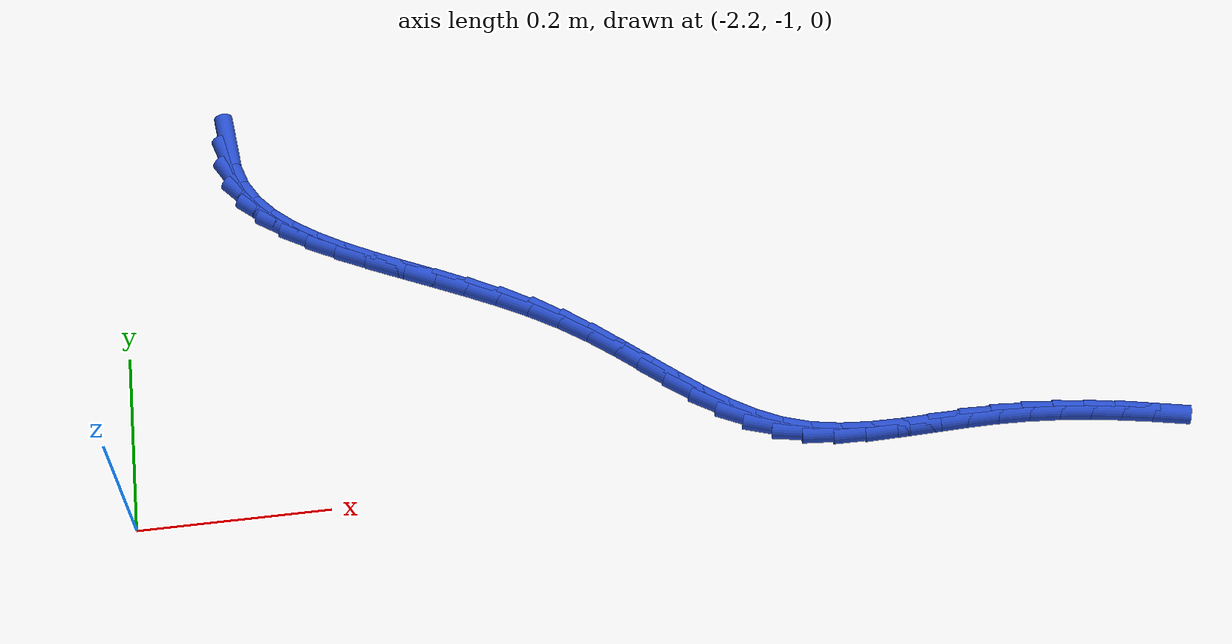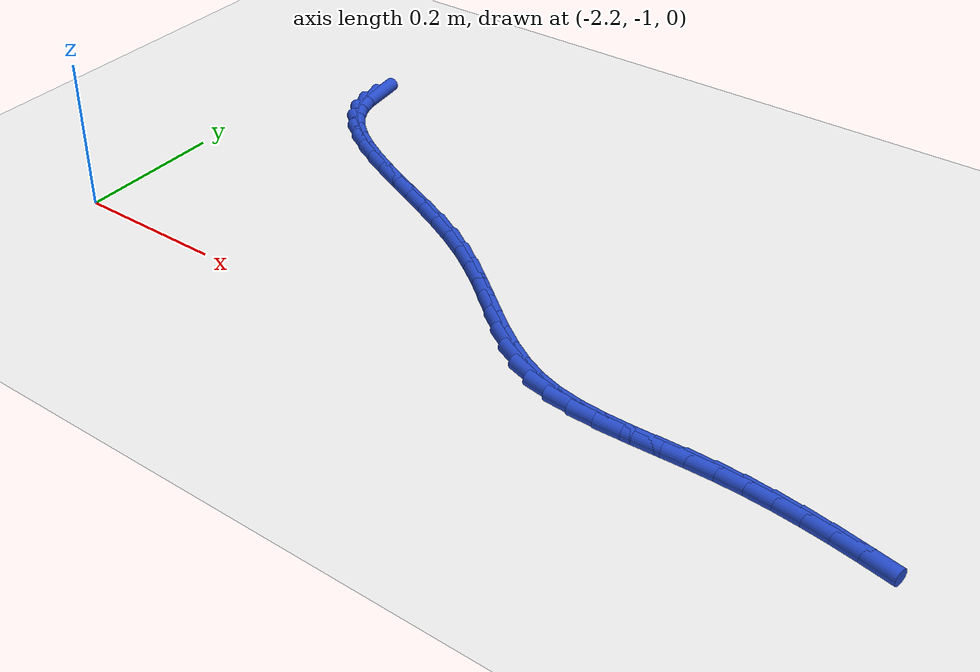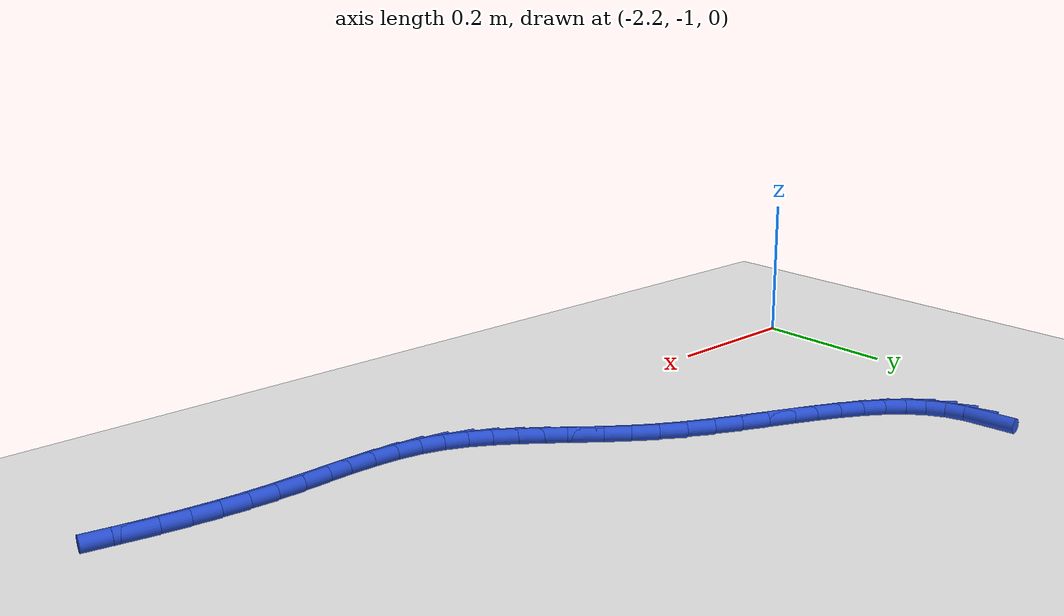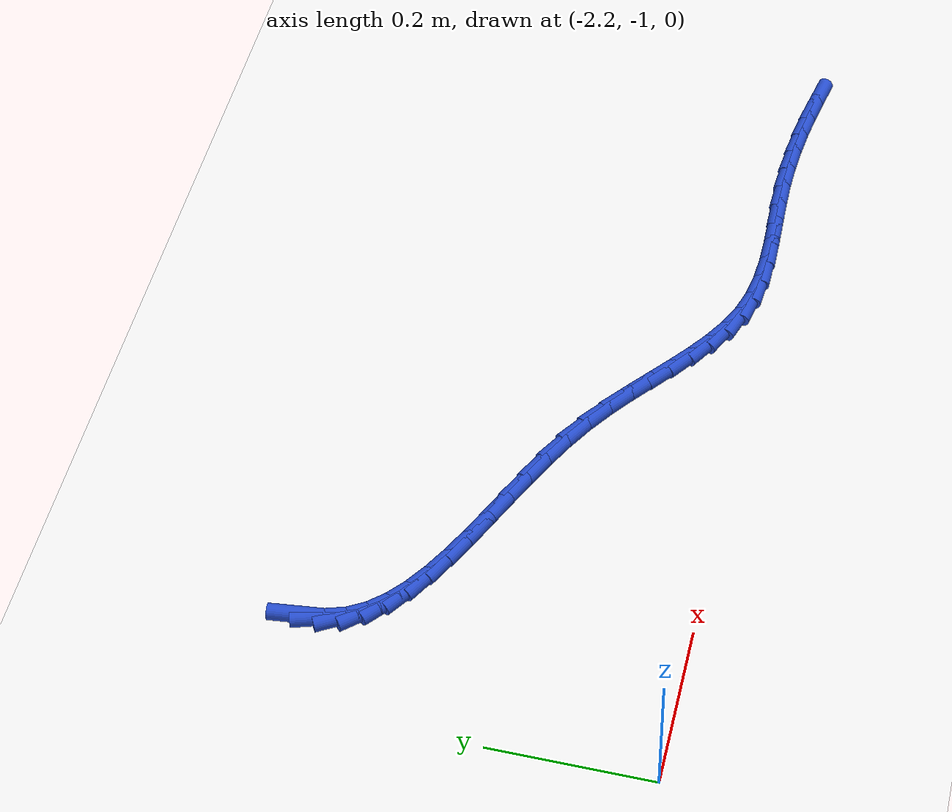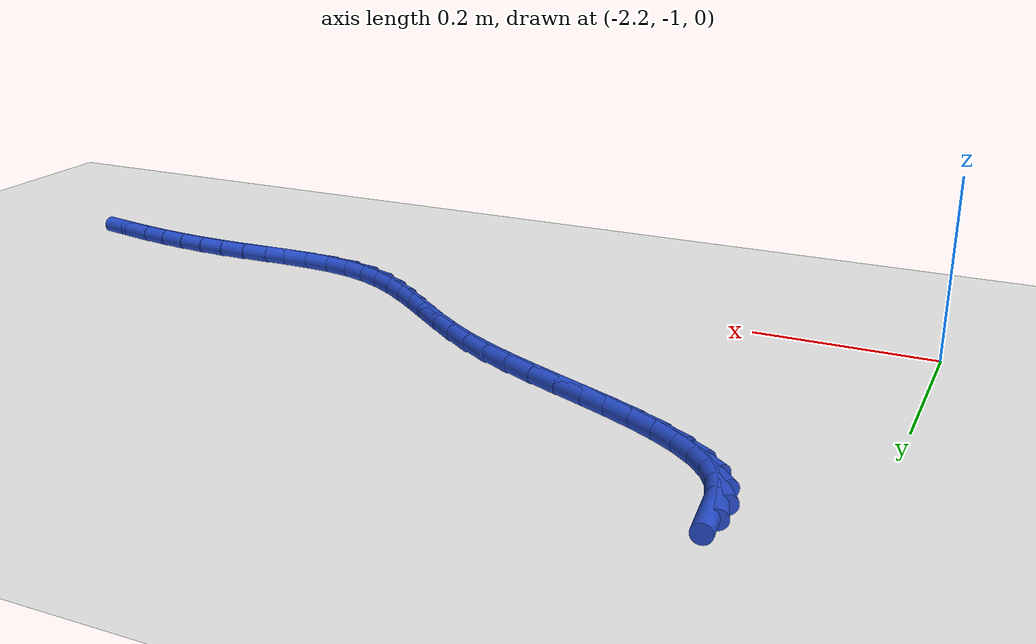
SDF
<sdf version="1.6">
 <world name="default">
  <model name="ground_plane">
   <static>1</static>
   <link name="link">
    <collision name="collision">
     <geometry><plane><normal>0 0 1</normal><size>100 100</size></plane></geometry>
     <surface><friction><ode><mu>100</mu><mu2>50</mu2></ode></friction></surface>
    </collision>
    <visual name="visual">
     <cast_shadows>0</cast_shadows>
     <geometry><plane><normal>0 0 1</normal><size>100 100</size></plane></geometry>
     <material>
      <script><uri>file://media/materials/scripts/gazebo.material</uri><name>Gazebo/WhiteGlow</name></script>
     </material>
    </visual>
   </link>
  </model>
  <model name="line">
   <link name="link_122">
    <pose>-2.081999684478303 -0.5546508269318868 0.01 0 1.57 -1.4625147714835065</pose>
    <collision name="collision">
     <geometry><cylinder><radius>0.01</radius><length>0.08</length></cylinder></geometry>
    </collision>
    <visual name="visual">
     <material>
      <script><name>Gazebo/Blue</name><uri>file://media/materials/scripts/gazebo.material</uri></script>
     </material>
     <geometry><cylinder><radius>0.01</radius><length>0.08</length></cylinder></geometry>
    </visual>
   </link>
   <link name="link_123">
    <pose>-2.0791011387692326 -0.5813147260082517 0.01 0 1.57 -1.2708981963711632</pose>
    <collision name="collision">
     <geometry><cylinder><radius>0.01</radius><length>0.08</length></cylinder></geometry>
    </collision>
    <visual name="visual">
     <material>
      <script><name>Gazebo/Blue</name><uri>file://media/materials/scripts/gazebo.material</uri></script>
     </material>
     <geometry><cylinder><radius>0.01</radius><length>0.08</length></cylinder></geometry>
    </visual>
   </link>
   <link name="link_124">
    <pose>-2.07151443708524 -0.6058493225656204 0.01 0 1.57 -1.0509214674087284</pose>
    <collision name="collision">
     <geometry><cylinder><radius>0.01</radius><length>0.08</length></cylinder></geometry>
    </collision>
    <visual name="visual">
     <material>
      <script><name>Gazebo/Blue</name><uri>file://media/materials/scripts/gazebo.material</uri></script>
     </material>
     <geometry><cylinder><radius>0.01</radius><length>0.08</length></cylinder></geometry>
    </visual>
   </link>
   <link name="link_125">
    <pose>-2.0587732671646557 -0.628108697384702 0.01 0 1.57 -0.8571988542562122</pose>
    <collision name="collision">
     <geometry><cylinder><radius>0.01</radius><length>0.08</length></cylinder></geometry>
    </collision>
    <visual name="visual">
     <material>
      <script><name>Gazebo/Blue</name><uri>file://media/materials/scripts/gazebo.material</uri></script>
     </material>
     <geometry><cylinder><radius>0.01</radius><length>0.08</length></cylinder></geometry>
    </visual>
   </link>
   <link name="link_126">
    <pose>-2.0412643425670702 -0.6483314474581567 0.01 0 1.57 -0.7076561087424363</pose>
    <collision name="collision">
     <geometry><cylinder><radius>0.01</radius><length>0.08</length></cylinder></geometry>
    </collision>
    <visual name="visual">
     <material>
      <script><name>Gazebo/Blue</name><uri>file://media/materials/scripts/gazebo.material</uri></script>
     </material>
     <geometry><cylinder><radius>0.01</radius><length>0.08</length></cylinder></geometry>
    </visual>
   </link>
   <link name="link_127">
    <pose>-2.019605038306566 -0.6668601444374603 0.01 0 1.57 -0.5984363878981686</pose>
    <collision name="collision">
     <geometry><cylinder><radius>0.01</radius><length>0.08</length></cylinder></geometry>
    </collision>
    <visual name="visual">
     <material>
      <script><name>Gazebo/Blue</name><uri>file://media/materials/scripts/gazebo.material</uri></script>
     </material>
     <geometry><cylinder><radius>0.01</radius><length>0.08</length></cylinder></geometry>
    </visual>
   </link>
   <link name="link_128">
    <pose>-1.9944127332243742 -0.6840373616992432 0.01 0 1.57 -0.522001447545632</pose>
    <collision name="collision">
     <geometry><cylinder><radius>0.01</radius><length>0.08</length></cylinder></geometry>
    </collision>
    <visual name="visual">
     <material>
      <script><name>Gazebo/Blue</name><uri>file://media/materials/scripts/gazebo.material</uri></script>
     </material>
     <geometry><cylinder><radius>0.01</radius><length>0.08</length></cylinder></geometry>
    </visual>
   </link>
   <link name="link_129">
    <pose>-1.966304806161729 -0.7002056726201351 0.01 0 1.57 -0.47148065394123917</pose>
    <collision name="collision">
     <geometry><cylinder><radius>0.01</radius><length>0.08</length></cylinder></geometry>
    </collision>
    <visual name="visual">
     <material>
      <script><name>Gazebo/Blue</name><uri>file://media/materials/scripts/gazebo.material</uri></script>
     </material>
     <geometry><cylinder><radius>0.01</radius><length>0.08</length></cylinder></geometry>
    </visual>
   </link>
   <link name="link_130">
    <pose>-1.9358986359598631 -0.7157076505767664 0.01 0 1.57 -0.44184201876323437</pose>
    <collision name="collision">
     <geometry><cylinder><radius>0.01</radius><length>0.08</length></cylinder></geometry>
    </collision>
    <visual name="visual">
     <material>
      <script><name>Gazebo/Blue</name><uri>file://media/materials/scripts/gazebo.material</uri></script>
     </material>
     <geometry><cylinder><radius>0.01</radius><length>0.08</length></cylinder></geometry>
    </visual>
   </link>
   <link name="link_131">
    <pose>-1.90381160146001 -0.7308858689457673 0.01 0 1.57 -0.4298381554982169</pose>
    <collision name="collision">
     <geometry><cylinder><radius>0.01</radius><length>0.08</length></cylinder></geometry>
    </collision>
    <visual name="visual">
     <material>
      <script><name>Gazebo/Blue</name><uri>file://media/materials/scripts/gazebo.material</uri></script>
     </material>
     <geometry><cylinder><radius>0.01</radius><length>0.08</length></cylinder></geometry>
    </visual>
   </link>
   <link name="link_132">
    <pose>-1.8706610815034006 -0.7460829011037678 0.01 0 1.57 -0.4336899541422334</pose>
    <collision name="collision">
     <geometry><cylinder><radius>0.01</radius><length>0.08</length></cylinder></geometry>
    </collision>
    <visual name="visual">
     <material>
      <script><name>Gazebo/Blue</name><uri>file://media/materials/scripts/gazebo.material</uri></script>
     </material>
     <geometry><cylinder><radius>0.01</radius><length>0.08</length></cylinder></geometry>
    </visual>
   </link>
   <link name="link_133">
    <pose>-1.8370644549312698 -0.7616413204273975 0.01 0 1.57 -0.4528122594154153</pose>
    <collision name="collision">
     <geometry><cylinder><radius>0.01</radius><length>0.08</length></cylinder></geometry>
    </collision>
    <visual name="visual">
     <material>
      <script><name>Gazebo/Blue</name><uri>file://media/materials/scripts/gazebo.material</uri></script>
     </material>
     <geometry><cylinder><radius>0.01</radius><length>0.08</length></cylinder></geometry>
    </visual>
   </link>
   <link name="link_134">
    <pose>-1.8036391005848493 -0.7779037002932869 0.01 0 1.57 -0.4876326988345452</pose>
    <collision name="collision">
     <geometry><cylinder><radius>0.01</radius><length>0.08</length></cylinder></geometry>
    </collision>
    <visual name="visual">
     <material>
      <script><name>Gazebo/Blue</name><uri>file://media/materials/scripts/gazebo.material</uri></script>
     </material>
     <geometry><cylinder><radius>0.01</radius><length>0.08</length></cylinder></geometry>
    </visual>
   </link>
   <link name="link_135">
    <pose>-1.7710023973053728 -0.7952126140780663 0.01 0 1.57 -0.5394681829736061</pose>
    <collision name="collision">
     <geometry><cylinder><radius>0.01</radius><length>0.08</length></cylinder></geometry>
    </collision>
    <visual name="visual">
     <material>
      <script><name>Gazebo/Blue</name><uri>file://media/materials/scripts/gazebo.material</uri></script>
     </material>
     <geometry><cylinder><radius>0.01</radius><length>0.08</length></cylinder></geometry>
    </visual>
   </link>
   <link name="link_136">
    <pose>-1.7397717239340733 -0.8139106351583656 0.01 0 1.57 -0.6051430117660546</pose>
    <collision name="collision">
     <geometry><cylinder><radius>0.01</radius><length>0.08</length></cylinder></geometry>
    </collision>
    <visual name="visual">
     <material>
      <script><name>Gazebo/Blue</name><uri>file://media/materials/scripts/gazebo.material</uri></script>
     </material>
     <geometry><cylinder><radius>0.01</radius><length>0.08</length></cylinder></geometry>
    </visual>
   </link>
   <link name="link_137">
    <pose>-1.7104284781011083 -0.8342077602424838 0.01 0 1.57 -0.6582336301331494</pose>
    <collision name="collision">
     <geometry><cylinder><radius>0.01</radius><length>0.08</length></cylinder></geometry>
    </collision>
    <visual name="visual">
     <material>
      <script><name>Gazebo/Blue</name><uri>file://media/materials/scripts/gazebo.material</uri></script>
     </material>
     <geometry><cylinder><radius>0.01</radius><length>0.08</length></cylinder></geometry>
    </visual>
   </link>
   <link name="link_138">
    <pose>-1.6827404905693966 -0.8556182846462811 0.01 0 1.57 -0.6886724020519869</pose>
    <collision name="collision">
     <geometry><cylinder><radius>0.01</radius><length>0.08</length></cylinder></geometry>
    </collision>
    <visual name="visual">
     <material>
      <script><name>Gazebo/Blue</name><uri>file://media/materials/scripts/gazebo.material</uri></script>
     </material>
     <geometry><cylinder><radius>0.01</radius><length>0.08</length></cylinder></geometry>
    </visual>
   </link>
   <link name="link_139">
    <pose>-1.6562423378928068 -0.8774290894298844 0.01 0 1.57 -0.6951871341471364</pose>
    <collision name="collision">
     <geometry><cylinder><radius>0.01</radius><length>0.08</length></cylinder></geometry>
    </collision>
    <visual name="visual">
     <material>
      <script><name>Gazebo/Blue</name><uri>file://media/materials/scripts/gazebo.material</uri></script>
     </material>
     <geometry><cylinder><radius>0.01</radius><length>0.08</length></cylinder></geometry>
    </visual>
   </link>
   <link name="link_140">
    <pose>-1.6304684647541918 -0.8989269270840424 0.01 0 1.57 -0.676161337664902</pose>
    <collision name="collision">
     <geometry><cylinder><radius>0.01</radius><length>0.08</length></cylinder></geometry>
    </collision>
    <visual name="visual">
     <material>
      <script><name>Gazebo/Blue</name><uri>file://media/materials/scripts/gazebo.material</uri></script>
     </material>
     <geometry><cylinder><radius>0.01</radius><length>0.08</length></cylinder></geometry>
    </visual>
   </link>
   <link name="link_141">
    <pose>-1.6049533158364044 -0.9193985500995039 0.01 0 1.57 -0.629438453676671</pose>
    <collision name="collision">
     <geometry><cylinder><radius>0.01</radius><length>0.08</length></cylinder></geometry>
    </collision>
    <visual name="visual">
     <material>
      <script><name>Gazebo/Blue</name><uri>file://media/materials/scripts/gazebo.material</uri></script>
     </material>
     <geometry><cylinder><radius>0.01</radius><length>0.08</length></cylinder></geometry>
    </visual>
   </link>
   <link name="link_142">
    <pose>-1.5792313358222974 -0.938130710967017 0.01 0 1.57 -0.5526646406215686</pose>
    <collision name="collision">
     <geometry><cylinder><radius>0.01</radius><length>0.08</length></cylinder></geometry>
    </collision>
    <visual name="visual">
     <material>
      <script><name>Gazebo/Blue</name><uri>file://media/materials/scripts/gazebo.material</uri></script>
     </material>
     <geometry><cylinder><radius>0.01</radius><length>0.08</length></cylinder></geometry>
    </visual>
   </link>
   <link name="link_143">
    <pose>-1.5528369693947233 -0.9544101621773301 0.01 0 1.57 -0.4445042122964524</pose>
    <collision name="collision">
     <geometry><cylinder><radius>0.01</radius><length>0.08</length></cylinder></geometry>
    </collision>
    <visual name="visual">
     <material>
      <script><name>Gazebo/Blue</name><uri>file://media/materials/scripts/gazebo.material</uri></script>
     </material>
     <geometry><cylinder><radius>0.01</radius><length>0.08</length></cylinder></geometry>
    </visual>
   </link>
   <link name="link_144">
    <pose>-1.5253046612365344 -0.9675236562211915 0.01 0 1.57 -0.3075157063915653</pose>
    <collision name="collision">
     <geometry><cylinder><radius>0.01</radius><length>0.08</length></cylinder></geometry>
    </collision>
    <visual name="visual">
     <material>
      <script><name>Gazebo/Blue</name><uri>file://media/materials/scripts/gazebo.material</uri></script>
     </material>
     <geometry><cylinder><radius>0.01</radius><length>0.08</length></cylinder></geometry>
    </visual>
   </link>
   <link name="link_145">
    <pose>-1.496177364236458 -0.9767742082027987 0.01 0 1.57 -0.17219749805106532</pose>
    <collision name="collision">
     <geometry><cylinder><radius>0.01</radius><length>0.08</length></cylinder></geometry>
    </collision>
    <visual name="visual">
     <material>
      <script><name>Gazebo/Blue</name><uri>file://media/materials/scripts/gazebo.material</uri></script>
     </material>
     <geometry><cylinder><radius>0.01</radius><length>0.08</length></cylinder></geometry>
    </visual>
   </link>
   <link name="link_146">
    <pose>-1.4653490954815356 -0.9821358585208632 0.01 0 1.57 -0.07266737975017662</pose>
    <collision name="collision">
     <geometry><cylinder><radius>0.01</radius><length>0.08</length></cylinder></geometry>
    </collision>
    <visual name="visual">
     <material>
      <script><name>Gazebo/Blue</name><uri>file://media/materials/scripts/gazebo.material</uri></script>
     </material>
     <geometry><cylinder><radius>0.01</radius><length>0.08</length></cylinder></geometry>
    </visual>
   </link>
   <link name="link_147">
    <pose>-1.4331820258518209 -0.9844774783154442 0.01 0 1.57 -0.007630202465955034</pose>
    <collision name="collision">
     <geometry><cylinder><radius>0.01</radius><length>0.08</length></cylinder></geometry>
    </collision>
    <visual name="visual">
     <material>
      <script><name>Gazebo/Blue</name><uri>file://media/materials/scripts/gazebo.material</uri></script>
     </material>
     <geometry><cylinder><radius>0.01</radius><length>0.08</length></cylinder></geometry>
    </visual>
   </link>
   <link name="link_148">
    <pose>-1.4000708622033913 -0.9847301281010734 0.01 0 1.57 0.026887306678852807</pose>
    <collision name="collision">
     <geometry><cylinder><radius>0.01</radius><length>0.08</length></cylinder></geometry>
    </collision>
    <visual name="visual">
     <material>
      <script><name>Gazebo/Blue</name><uri>file://media/materials/scripts/gazebo.material</uri></script>
     </material>
     <geometry><cylinder><radius>0.01</radius><length>0.08</length></cylinder></geometry>
    </visual>
   </link>
   <link name="link_149">
    <pose>-1.3664103113923247 -0.9838248683922824 0.01 0 1.57 0.03346675320288039</pose>
    <collision name="collision">
     <geometry><cylinder><radius>0.01</radius><length>0.08</length></cylinder></geometry>
    </collision>
    <visual name="visual">
     <material>
      <script><name>Gazebo/Blue</name><uri>file://media/materials/scripts/gazebo.material</uri></script>
     </material>
     <geometry><cylinder><radius>0.01</radius><length>0.08</length></cylinder></geometry>
    </visual>
   </link>
   <link name="link_150">
    <pose>-1.3325950802746978 -0.9826927597036026 0.01 0 1.57 0.012749294994267375</pose>
    <collision name="collision">
     <geometry><cylinder><radius>0.01</radius><length>0.08</length></cylinder></geometry>
    </collision>
    <visual name="visual">
     <material>
      <script><name>Gazebo/Blue</name><uri>file://media/materials/scripts/gazebo.material</uri></script>
     </material>
     <geometry><cylinder><radius>0.01</radius><length>0.08</length></cylinder></geometry>
    </visual>
   </link>
   <link name="link_151">
    <pose>-1.2990197834132964 -0.9822646751448784 0.01 0 1.57 -0.029272765880179717</pose>
    <collision name="collision">
     <geometry><cylinder><radius>0.01</radius><length>0.08</length></cylinder></geometry>
    </collision>
    <visual name="visual">
     <material>
      <script><name>Gazebo/Blue</name><uri>file://media/materials/scripts/gazebo.material</uri></script>
     </material>
     <geometry><cylinder><radius>0.01</radius><length>0.08</length></cylinder></geometry>
    </visual>
   </link>
   <link name="link_152">
    <pose>-1.2659614178598626 -0.9832326614433838 0.01 0 1.57 -0.07192048646478677</pose>
    <collision name="collision">
     <geometry><cylinder><radius>0.01</radius><length>0.08</length></cylinder></geometry>
    </collision>
    <visual name="visual">
     <material>
      <script><name>Gazebo/Blue</name><uri>file://media/materials/scripts/gazebo.material</uri></script>
     </material>
     <geometry><cylinder><radius>0.01</radius><length>0.08</length></cylinder></geometry>
    </visual>
   </link>
   <link name="link_153">
    <pose>-1.2333490172135013 -0.9855822136240023 0.01 0 1.57 -0.11058157683929017</pose>
    <collision name="collision">
     <geometry><cylinder><radius>0.01</radius><length>0.08</length></cylinder></geometry>
    </collision>
    <visual name="visual">
     <material>
      <script><name>Gazebo/Blue</name><uri>file://media/materials/scripts/gazebo.material</uri></script>
     </material>
     <geometry><cylinder><radius>0.01</radius><length>0.08</length></cylinder></geometry>
    </visual>
   </link>
   <link name="link_154">
    <pose>-1.2010475740858846 -0.989168789294324 0.01 0 1.57 -0.1446323291605637</pose>
    <collision name="collision">
     <geometry><cylinder><radius>0.01</radius><length>0.08</length></cylinder></geometry>
    </collision>
    <visual name="visual">
     <material>
      <script><name>Gazebo/Blue</name><uri>file://media/materials/scripts/gazebo.material</uri></script>
     </material>
     <geometry><cylinder><radius>0.01</radius><length>0.08</length></cylinder></geometry>
    </visual>
   </link>
   <link name="link_155">
    <pose>-1.1689220810886847 -0.9938478460619398 0.01 0 1.57 -0.1736145640922527</pose>
    <collision name="collision">
     <geometry><cylinder><radius>0.01</radius><length>0.08</length></cylinder></geometry>
    </collision>
    <visual name="visual">
     <material>
      <script><name>Gazebo/Blue</name><uri>file://media/materials/scripts/gazebo.material</uri></script>
     </material>
     <geometry><cylinder><radius>0.01</radius><length>0.08</length></cylinder></geometry>
    </visual>
   </link>
   <link name="link_156">
    <pose>-1.1368375308335739 -0.9994748415344397 0.01 0 1.57 -0.19723625179320448</pose>
    <collision name="collision">
     <geometry><cylinder><radius>0.01</radius><length>0.08</length></cylinder></geometry>
    </collision>
    <visual name="visual">
     <material>
      <script><name>Gazebo/Blue</name><uri>file://media/materials/scripts/gazebo.material</uri></script>
     </material>
     <geometry><cylinder><radius>0.01</radius><length>0.08</length></cylinder></geometry>
    </visual>
   </link>
  </model>
 </world>
</sdf>
